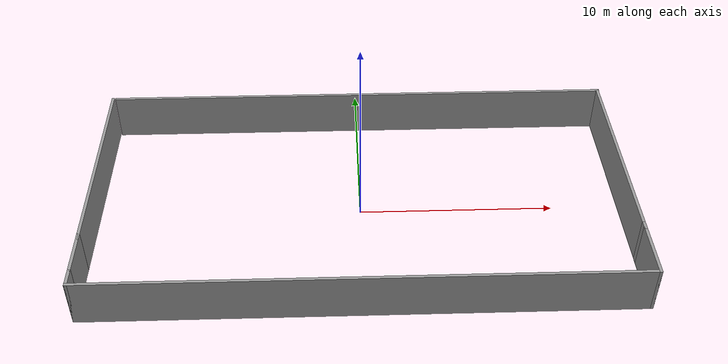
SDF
<?xml version='1.0'?>
<sdf version='1.6'>
  <model name='wall_room'>
    <link name='Wall_11'>
      <pose frame=''>0.120933 7.01078 0 0 -0 3.14159</pose>
      <self_collide>0</self_collide>
      <kinematic>0</kinematic>
      <inertial>
        <inertia>
          <ixx>0</ixx>
          <ixy>0</ixy>
          <ixz>0</ixz>
          <iyy>0</iyy>
          <iyz>0</iyz>
          <izz>0</izz>
        </inertia>
        <mass>0</mass>
        <pose frame=''>0 0 0 0 -0 0</pose>
      </inertial>
      <visual name='Wall_11_Visual'>
        <pose frame=''>0 0 1.25 0 -0 0</pose>
        <geometry>
          <box>
            <size>27.0552 0.15 2.5</size>
          </box>
        </geometry>
        <material>
          <script>
            <uri>file://media/materials/scripts/gazebo.material</uri>
            <name>Gazebo/Grey</name>
          </script>
          <ambient>1 1 1 1</ambient>
          <shader type='pixel'/>
          <diffuse>0.7 0.7 0.7 1</diffuse>
          <specular>0.01 0.01 0.01 1</specular>
          <emissive>0 0 0 1</emissive>
        </material>
        <meta>
          <layer>0</layer>
        </meta>
        <transparency>0</transparency>
        <cast_shadows>1</cast_shadows>
      </visual>
      <collision name='Wall_11_Collision'>
        <laser_retro>0</laser_retro>
        <max_contacts>10</max_contacts>
        <pose frame=''>0 0 1.25 0 -0 0</pose>
        <geometry>
          <box>
            <size>27.0552 0.15 2.5</size>
          </box>
        </geometry>
        <surface>
          <friction>
            <ode>
              <mu>1</mu>
              <mu2>1</mu2>
              <fdir1>0 0 0</fdir1>
              <slip1>0</slip1>
              <slip2>0</slip2>
            </ode>
            <torsional>
              <coefficient>1</coefficient>
              <patch_radius>0</patch_radius>
              <surface_radius>0</surface_radius>
              <use_patch_radius>1</use_patch_radius>
              <ode>
                <slip>0</slip>
              </ode>
            </torsional>
          </friction>
          <bounce>
            <restitution_coefficient>0</restitution_coefficient>
            <threshold>1e+06</threshold>
          </bounce>
          <contact>
            <collide_without_contact>0</collide_without_contact>
            <collide_without_contact_bitmask>1</collide_without_contact_bitmask>
            <collide_bitmask>1</collide_bitmask>
            <ode>
              <soft_cfm>0</soft_cfm>
              <soft_erp>0.2</soft_erp>
              <kp>1e+13</kp>
              <kd>1</kd>
              <max_vel>0.01</max_vel>
              <min_depth>0</min_depth>
            </ode>
            <bullet>
              <split_impulse>1</split_impulse>
              <split_impulse_penetration_threshold>-0.01</split_impulse_penetration_threshold>
              <soft_cfm>0</soft_cfm>
              <soft_erp>0.2</soft_erp>
              <kp>1e+13</kp>
              <kd>1</kd>
            </bullet>
          </contact>
        </surface>
      </collision>
    </link>
    <link name='Wall_13'>
      <pose frame=''>-13.55 -5 0 0 0 -1.5708</pose>
      <self_collide>0</self_collide>
      <kinematic>0</kinematic>
      <visual name='Wall_13_Visual'>
        <pose frame=''>0 0 1.25 0 -0 0</pose>
        <geometry>
          <box>
            <size>2.5 0.15 2.5</size>
          </box>
        </geometry>
        <material>
          <script>
            <uri>file://media/materials/scripts/gazebo.material</uri>
            <name>Gazebo/Grey</name>
          </script>
          <ambient>1 1 1 1</ambient>
          <shader type='pixel'/>
          <diffuse>0.7 0.7 0.7 1</diffuse>
          <specular>0.01 0.01 0.01 1</specular>
          <emissive>0 0 0 1</emissive>
        </material>
        <meta>
          <layer>0</layer>
        </meta>
        <transparency>0</transparency>
        <cast_shadows>1</cast_shadows>
      </visual>
      <collision name='Wall_13_Collision'>
        <laser_retro>0</laser_retro>
        <max_contacts>10</max_contacts>
        <pose frame=''>0 0 1.25 0 -0 0</pose>
        <geometry>
          <box>
            <size>2.5 0.15 2.5</size>
          </box>
        </geometry>
        <surface>
          <friction>
            <ode>
              <mu>1</mu>
              <mu2>1</mu2>
              <fdir1>0 0 0</fdir1>
              <slip1>0</slip1>
              <slip2>0</slip2>
            </ode>
            <torsional>
              <coefficient>1</coefficient>
              <patch_radius>0</patch_radius>
              <surface_radius>0</surface_radius>
              <use_patch_radius>1</use_patch_radius>
              <ode>
                <slip>0</slip>
              </ode>
            </torsional>
          </friction>
          <bounce>
            <restitution_coefficient>0</restitution_coefficient>
            <threshold>1e+06</threshold>
          </bounce>
          <contact>
            <collide_without_contact>0</collide_without_contact>
            <collide_without_contact_bitmask>1</collide_without_contact_bitmask>
            <collide_bitmask>1</collide_bitmask>
            <ode>
              <soft_cfm>0</soft_cfm>
              <soft_erp>0.2</soft_erp>
              <kp>1e+13</kp>
              <kd>1</kd>
              <max_vel>0.01</max_vel>
              <min_depth>0</min_depth>
            </ode>
            <bullet>
              <split_impulse>1</split_impulse>
              <split_impulse_penetration_threshold>-0.01</split_impulse_penetration_threshold>
              <soft_cfm>0</soft_cfm>
              <soft_erp>0.2</soft_erp>
              <kp>1e+13</kp>
              <kd>1</kd>
            </bullet>
          </contact>
        </surface>
      </collision>
    </link>
    <link name='Wall_14'>
      <pose frame=''>-13.55 -6.6 0 0 0 -1.5708</pose>
      <self_collide>0</self_collide>
      <kinematic>0</kinematic>
      <visual name='Wall_14_Visual'>
        <pose frame=''>0 0 1.25 0 -0 0</pose>
        <geometry>
          <box>
            <size>1 0.15 2.5</size>
          </box>
        </geometry>
        <material>
          <script>
            <uri>file://media/materials/scripts/gazebo.material</uri>
            <name>Gazebo/Grey</name>
          </script>
          <ambient>1 1 1 1</ambient>
          <shader type='pixel'/>
          <diffuse>0.7 0.7 0.7 1</diffuse>
          <specular>0.01 0.01 0.01 1</specular>
          <emissive>0 0 0 1</emissive>
        </material>
        <meta>
          <layer>0</layer>
        </meta>
        <transparency>0</transparency>
        <cast_shadows>1</cast_shadows>
      </visual>
      <collision name='Wall_14_Collision'>
        <laser_retro>0</laser_retro>
        <max_contacts>10</max_contacts>
        <pose frame=''>0 0 1.25 0 -0 0</pose>
        <geometry>
          <box>
            <size>1 0.15 2.5</size>
          </box>
        </geometry>
        <surface>
          <friction>
            <ode>
              <mu>1</mu>
              <mu2>1</mu2>
              <fdir1>0 0 0</fdir1>
              <slip1>0</slip1>
              <slip2>0</slip2>
            </ode>
            <torsional>
              <coefficient>1</coefficient>
              <patch_radius>0</patch_radius>
              <surface_radius>0</surface_radius>
              <use_patch_radius>1</use_patch_radius>
              <ode>
                <slip>0</slip>
              </ode>
            </torsional>
          </friction>
          <bounce>
            <restitution_coefficient>0</restitution_coefficient>
            <threshold>1e+06</threshold>
          </bounce>
          <contact>
            <collide_without_contact>0</collide_without_contact>
            <collide_without_contact_bitmask>1</collide_without_contact_bitmask>
            <collide_bitmask>1</collide_bitmask>
            <ode>
              <soft_cfm>0</soft_cfm>
              <soft_erp>0.2</soft_erp>
              <kp>1e+13</kp>
              <kd>1</kd>
              <max_vel>0.01</max_vel>
              <min_depth>0</min_depth>
            </ode>
            <bullet>
              <split_impulse>1</split_impulse>
              <split_impulse_penetration_threshold>-0.01</split_impulse_penetration_threshold>
              <soft_cfm>0</soft_cfm>
              <soft_erp>0.2</soft_erp>
              <kp>1e+13</kp>
              <kd>1</kd>
            </bullet>
          </contact>
        </surface>
      </collision>
    </link>
    <link name='Wall_15'>
      <pose frame=''>0 -7.025 0 0 -0 0</pose>
      <self_collide>0</self_collide>
      <kinematic>0</kinematic>
      <visual name='Wall_15_Visual'>
        <pose frame=''>0 0 1.25 0 -0 0</pose>
        <geometry>
          <box>
            <size>27.25 0.15 2.5</size>
          </box>
        </geometry>
        <material>
          <script>
            <uri>file://media/materials/scripts/gazebo.material</uri>
            <name>Gazebo/Grey</name>
          </script>
          <ambient>1 1 1 1</ambient>
          <shader type='pixel'/>
          <diffuse>0.7 0.7 0.7 1</diffuse>
          <specular>0.01 0.01 0.01 1</specular>
          <emissive>0 0 0 1</emissive>
        </material>
        <meta>
          <layer>0</layer>
        </meta>
        <transparency>0</transparency>
        <cast_shadows>1</cast_shadows>
      </visual>
      <collision name='Wall_15_Collision'>
        <laser_retro>0</laser_retro>
        <max_contacts>10</max_contacts>
        <pose frame=''>0 0 1.25 0 -0 0</pose>
        <geometry>
          <box>
            <size>27.25 0.15 2.5</size>
          </box>
        </geometry>
        <surface>
          <friction>
            <ode>
              <mu>1</mu>
              <mu2>1</mu2>
              <fdir1>0 0 0</fdir1>
              <slip1>0</slip1>
              <slip2>0</slip2>
            </ode>
            <torsional>
              <coefficient>1</coefficient>
              <patch_radius>0</patch_radius>
              <surface_radius>0</surface_radius>
              <use_patch_radius>1</use_patch_radius>
              <ode>
                <slip>0</slip>
              </ode>
            </torsional>
          </friction>
          <bounce>
            <restitution_coefficient>0</restitution_coefficient>
            <threshold>1e+06</threshold>
          </bounce>
          <contact>
            <collide_without_contact>0</collide_without_contact>
            <collide_without_contact_bitmask>1</collide_without_contact_bitmask>
            <collide_bitmask>1</collide_bitmask>
            <ode>
              <soft_cfm>0</soft_cfm>
              <soft_erp>0.2</soft_erp>
              <kp>1e+13</kp>
              <kd>1</kd>
              <max_vel>0.01</max_vel>
              <min_depth>0</min_depth>
            </ode>
            <bullet>
              <split_impulse>1</split_impulse>
              <split_impulse_penetration_threshold>-0.01</split_impulse_penetration_threshold>
              <soft_cfm>0</soft_cfm>
              <soft_erp>0.2</soft_erp>
              <kp>1e+13</kp>
              <kd>1</kd>
            </bullet>
          </contact>
        </surface>
      </collision>
    </link>
    <link name='Wall_16'>
      <pose frame=''>13.55 -5.6 0 0 -0 1.5708</pose>
      <self_collide>0</self_collide>
      <kinematic>0</kinematic>
      <visual name='Wall_16_Visual'>
        <pose frame=''>0 0 1.25 0 -0 0</pose>
        <geometry>
          <box>
            <size>3 0.15 2.5</size>
          </box>
        </geometry>
        <material>
          <script>
            <uri>file://media/materials/scripts/gazebo.material</uri>
            <name>Gazebo/Grey</name>
          </script>
          <ambient>1 1 1 1</ambient>
          <shader type='pixel'/>
          <diffuse>0.7 0.7 0.7 1</diffuse>
          <specular>0.01 0.01 0.01 1</specular>
          <emissive>0 0 0 1</emissive>
        </material>
        <meta>
          <layer>0</layer>
        </meta>
        <transparency>0</transparency>
        <cast_shadows>1</cast_shadows>
      </visual>
      <collision name='Wall_16_Collision'>
        <laser_retro>0</laser_retro>
        <max_contacts>10</max_contacts>
        <pose frame=''>0 0 1.25 0 -0 0</pose>
        <geometry>
          <box>
            <size>3 0.15 2.5</size>
          </box>
        </geometry>
        <surface>
          <friction>
            <ode>
              <mu>1</mu>
              <mu2>1</mu2>
              <fdir1>0 0 0</fdir1>
              <slip1>0</slip1>
              <slip2>0</slip2>
            </ode>
            <torsional>
              <coefficient>1</coefficient>
              <patch_radius>0</patch_radius>
              <surface_radius>0</surface_radius>
              <use_patch_radius>1</use_patch_radius>
              <ode>
                <slip>0</slip>
              </ode>
            </torsional>
          </friction>
          <bounce>
            <restitution_coefficient>0</restitution_coefficient>
            <threshold>1e+06</threshold>
          </bounce>
          <contact>
            <collide_without_contact>0</collide_without_contact>
            <collide_without_contact_bitmask>1</collide_without_contact_bitmask>
            <collide_bitmask>1</collide_bitmask>
            <ode>
              <soft_cfm>0</soft_cfm>
              <soft_erp>0.2</soft_erp>
              <kp>1e+13</kp>
              <kd>1</kd>
              <max_vel>0.01</max_vel>
              <min_depth>0</min_depth>
            </ode>
            <bullet>
              <split_impulse>1</split_impulse>
              <split_impulse_penetration_threshold>-0.01</split_impulse_penetration_threshold>
              <soft_cfm>0</soft_cfm>
              <soft_erp>0.2</soft_erp>
              <kp>1e+13</kp>
              <kd>1</kd>
            </bullet>
          </contact>
        </surface>
      </collision>
    </link>
    <link name='Wall_18'>
      <pose frame=''>13.55 -4 0 0 -0 1.5708</pose>
      <self_collide>0</self_collide>
      <kinematic>0</kinematic>
      <visual name='Wall_18_Visual'>
        <pose frame=''>0 0 1.25 0 -0 0</pose>
        <geometry>
          <box>
            <size>0.5 0.15 2.5</size>
          </box>
        </geometry>
        <material>
          <script>
            <uri>file://media/materials/scripts/gazebo.material</uri>
            <name>Gazebo/Grey</name>
          </script>
          <ambient>1 1 1 1</ambient>
          <shader type='pixel'/>
          <diffuse>0.7 0.7 0.7 1</diffuse>
          <specular>0.01 0.01 0.01 1</specular>
          <emissive>0 0 0 1</emissive>
        </material>
        <meta>
          <layer>0</layer>
        </meta>
        <transparency>0</transparency>
        <cast_shadows>1</cast_shadows>
      </visual>
      <collision name='Wall_18_Collision'>
        <laser_retro>0</laser_retro>
        <max_contacts>10</max_contacts>
        <pose frame=''>0 0 1.25 0 -0 0</pose>
        <geometry>
          <box>
            <size>0.5 0.15 2.5</size>
          </box>
        </geometry>
        <surface>
          <friction>
            <ode>
              <mu>1</mu>
              <mu2>1</mu2>
              <fdir1>0 0 0</fdir1>
              <slip1>0</slip1>
              <slip2>0</slip2>
            </ode>
            <torsional>
              <coefficient>1</coefficient>
              <patch_radius>0</patch_radius>
              <surface_radius>0</surface_radius>
              <use_patch_radius>1</use_patch_radius>
              <ode>
                <slip>0</slip>
              </ode>
            </torsional>
          </friction>
          <bounce>
            <restitution_coefficient>0</restitution_coefficient>
            <threshold>1e+06</threshold>
          </bounce>
          <contact>
            <collide_without_contact>0</collide_without_contact>
            <collide_without_contact_bitmask>1</collide_without_contact_bitmask>
            <collide_bitmask>1</collide_bitmask>
            <ode>
              <soft_cfm>0</soft_cfm>
              <soft_erp>0.2</soft_erp>
              <kp>1e+13</kp>
              <kd>1</kd>
              <max_vel>0.01</max_vel>
              <min_depth>0</min_depth>
            </ode>
            <bullet>
              <split_impulse>1</split_impulse>
              <split_impulse_penetration_threshold>-0.01</split_impulse_penetration_threshold>
              <soft_cfm>0</soft_cfm>
              <soft_erp>0.2</soft_erp>
              <kp>1e+13</kp>
              <kd>1</kd>
            </bullet>
          </contact>
        </surface>
      </collision>
    </link>
    <link name='Wall_4'>
      <pose frame=''>-13.55 1.475 0 0 0 -1.5708</pose>
      <self_collide>0</self_collide>
      <kinematic>0</kinematic>
      <inertial>
        <inertia>
          <ixx>0</ixx>
          <ixy>0</ixy>
          <ixz>0</ixz>
          <iyy>0</iyy>
          <iyz>0</iyz>
          <izz>0</izz>
        </inertia>
        <mass>0</mass>
        <pose frame=''>0 0 0 0 -0 0</pose>
      </inertial>
      <visual name='Wall_4_Visual'>
        <pose frame=''>0 0 1.25 0 -0 0</pose>
        <geometry>
          <box>
            <size>11.2201 0.15 2.5</size>
          </box>
        </geometry>
        <material>
          <script>
            <uri>file://media/materials/scripts/gazebo.material</uri>
            <name>Gazebo/Grey</name>
          </script>
          <ambient>1 1 1 1</ambient>
          <shader type='pixel'/>
          <diffuse>0.7 0.7 0.7 1</diffuse>
          <specular>0.01 0.01 0.01 1</specular>
          <emissive>0 0 0 1</emissive>
        </material>
        <meta>
          <layer>0</layer>
        </meta>
        <transparency>0</transparency>
        <cast_shadows>1</cast_shadows>
      </visual>
      <collision name='Wall_4_Collision'>
        <laser_retro>0</laser_retro>
        <max_contacts>10</max_contacts>
        <pose frame=''>0 0 1.25 0 -0 0</pose>
        <geometry>
          <box>
            <size>11.2201 0.15 2.5</size>
          </box>
        </geometry>
        <surface>
          <friction>
            <ode>
              <mu>1</mu>
              <mu2>1</mu2>
              <fdir1>0 0 0</fdir1>
              <slip1>0</slip1>
              <slip2>0</slip2>
            </ode>
            <torsional>
              <coefficient>1</coefficient>
              <patch_radius>0</patch_radius>
              <surface_radius>0</surface_radius>
              <use_patch_radius>1</use_patch_radius>
              <ode>
                <slip>0</slip>
              </ode>
            </torsional>
          </friction>
          <bounce>
            <restitution_coefficient>0</restitution_coefficient>
            <threshold>1e+06</threshold>
          </bounce>
          <contact>
            <collide_without_contact>0</collide_without_contact>
            <collide_without_contact_bitmask>1</collide_without_contact_bitmask>
            <collide_bitmask>1</collide_bitmask>
            <ode>
              <soft_cfm>0</soft_cfm>
              <soft_erp>0.2</soft_erp>
              <kp>1e+13</kp>
              <kd>1</kd>
              <max_vel>0.01</max_vel>
              <min_depth>0</min_depth>
            </ode>
            <bullet>
              <split_impulse>1</split_impulse>
              <split_impulse_penetration_threshold>-0.01</split_impulse_penetration_threshold>
              <soft_cfm>0</soft_cfm>
              <soft_erp>0.2</soft_erp>
              <kp>1e+13</kp>
              <kd>1</kd>
            </bullet>
          </contact>
        </surface>
      </collision>
    </link>
    <link name='Wall_6'>
      <pose frame=''>13.55 1.6 0 0 -0 1.5708</pose>
      <self_collide>0</self_collide>
      <kinematic>0</kinematic>
      <visual name='Wall_6_Visual'>
        <pose frame=''>0 0 1.25 0 -0 0</pose>
        <geometry>
          <box>
            <size>11 0.15 2.5</size>
          </box>
        </geometry>
        <material>
          <script>
            <uri>file://media/materials/scripts/gazebo.material</uri>
            <name>Gazebo/Grey</name>
          </script>
          <ambient>1 1 1 1</ambient>
          <shader type='pixel'/>
          <diffuse>0.7 0.7 0.7 1</diffuse>
          <specular>0.01 0.01 0.01 1</specular>
          <emissive>0 0 0 1</emissive>
        </material>
        <meta>
          <layer>0</layer>
        </meta>
        <transparency>0</transparency>
        <cast_shadows>1</cast_shadows>
      </visual>
      <collision name='Wall_6_Collision'>
        <laser_retro>0</laser_retro>
        <max_contacts>10</max_contacts>
        <pose frame=''>0 0 1.25 0 -0 0</pose>
        <geometry>
          <box>
            <size>11 0.15 2.5</size>
          </box>
        </geometry>
        <surface>
          <friction>
            <ode>
              <mu>1</mu>
              <mu2>1</mu2>
              <fdir1>0 0 0</fdir1>
              <slip1>0</slip1>
              <slip2>0</slip2>
            </ode>
            <torsional>
              <coefficient>1</coefficient>
              <patch_radius>0</patch_radius>
              <surface_radius>0</surface_radius>
              <use_patch_radius>1</use_patch_radius>
              <ode>
                <slip>0</slip>
              </ode>
            </torsional>
          </friction>
          <bounce>
            <restitution_coefficient>0</restitution_coefficient>
            <threshold>1e+06</threshold>
          </bounce>
          <contact>
            <collide_without_contact>0</collide_without_contact>
            <collide_without_contact_bitmask>1</collide_without_contact_bitmask>
            <collide_bitmask>1</collide_bitmask>
            <ode>
              <soft_cfm>0</soft_cfm>
              <soft_erp>0.2</soft_erp>
              <kp>1e+13</kp>
              <kd>1</kd>
              <max_vel>0.01</max_vel>
              <min_depth>0</min_depth>
            </ode>
            <bullet>
              <split_impulse>1</split_impulse>
              <split_impulse_penetration_threshold>-0.01</split_impulse_penetration_threshold>
              <soft_cfm>0</soft_cfm>
              <soft_erp>0.2</soft_erp>
              <kp>1e+13</kp>
              <kd>1</kd>
            </bullet>
          </contact>
        </surface>
      </collision>
    </link>
    <static>1</static>
    <allow_auto_disable>1</allow_auto_disable>
  </model>
</sdf>
